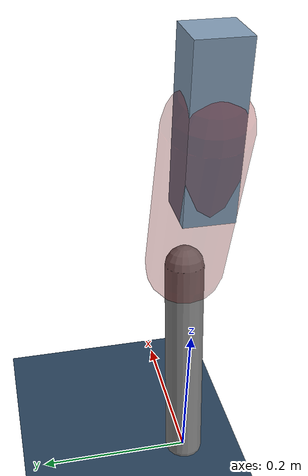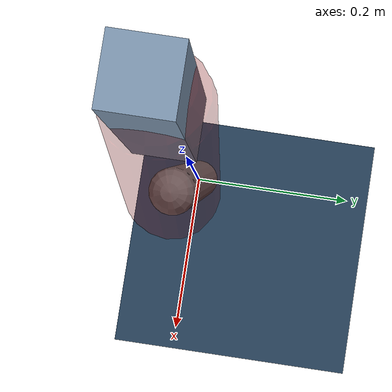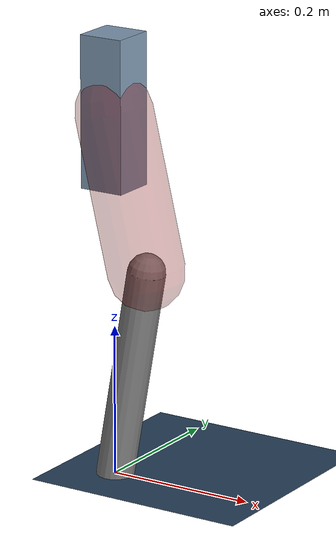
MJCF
<mujoco model="Hopper2D">
	<compiler inertiafromgeom="true" angle="radian" />
	<option timestep="0.001" integrator="implicit" cone="elliptic" solver="Newton" tolerance="1e-10" />

	<default>
		<geom contype="1" conaffinity="1" condim="3" friction="2 0.005 0.0001" solref="0.005 1" />
		<joint limited="true" damping="0.1" />
	</default>

	<asset>
		<texture name="skybox" type="skybox" builtin="gradient" rgb1=".4 .6 .8" rgb2="0 0 0" width="800" height="800" />
		<texture name="grid" type="2d" builtin="checker" rgb1=".1 .2 .3" rgb2=".2 .3 .4" width="300" height="300" mark="edge" markrgb=".2 .3 .4" />
		<material name="ground" texture="grid" texrepeat="1 1" texuniform="true" reflectance="0.1" />
		<material name="leg" rgba="0.5 0.6 0.7 1" />
	</asset>

	<worldbody>

		<geom name="floor" type="plane" size="5 5 0.25" material="ground" />

		<light directional="false" diffuse="0.8 0.8 0.8" specular="0.3 0.3 0.3" pos="0 0 2" dir="0 0 -1" />
		<light mode="targetbodycom" target="base" directional="false" diffuse="0.8 0.8 0.8" specular="0.3 0.3 0.3" pos="0 0 2" dir="0 0 -1" />

		<camera name="fixed" pos="0 -2 1" xyaxes="1 0 0 0 0 1" />
		<camera name="tracking" mode="trackcom" pos="0 -3 1" />

		<body name="root" pos="0 0 0.4870976256467878">
			<joint name="slide_x" type="slide" axis="1 0 0" range="-100 100" />
			<joint name="slide_z" type="slide" axis="0 0 1" range="0 10" />

			<body name="base" pos="0 0 0">
				<geom name="torso" type="box" size="0.03 0.03 0.1" mass="1.883" material="leg" />

				<body name="link1" pos="0 0 0" euler="0 1.3371826112904415 0">
					<joint type="hinge" axis="0 -1 0" pos="0 0 0" name="hinge1" limited="true" range="-3.14 3.14" stiffness="0" damping="0.1" />
					<geom name="thigh" type="capsule" fromto="0 0 0 0.21182411777515986 0 0" size="0.05" rgba="0.5 0 0 0.3" mass="0.7591427062154157" />

					<body name="link2" pos="0.21182411777515986 0 0" euler="0 0.4063633000039795 0">
						<joint type="hinge" axis="0 -1 0" pos="0 0 0" name="hinge2" limited="true" range="-3.14 3.14" stiffness="0" damping="0.1" />
						<geom name="shank" type="capsule" fromto="0 0 0 0.285273507871628 0 0" size="0.025" mass="0.4714188062973024" />

					</body>
				</body>
			</body>
		</body>
	</worldbody>

	<actuator>
		<motor name="torque1" joint="hinge1" ctrlrange="-43.692101570156325 43.692101570156325" ctrllimited="true" gear="1" />
		<motor name="torque2" joint="hinge2" ctrlrange="-27.70741106299707 27.70741106299707" ctrllimited="true" gear="1" />
	</actuator>
</mujoco>
